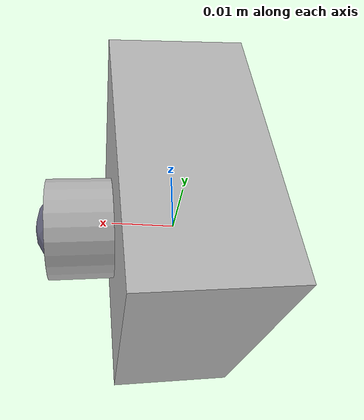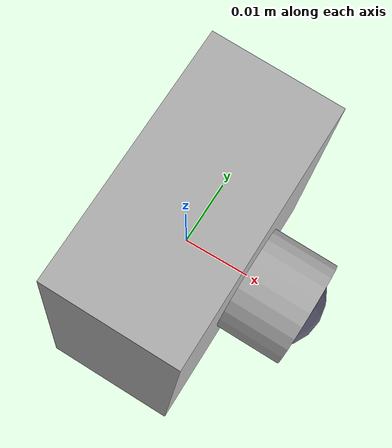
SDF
<?xml version="1.0" encoding="UTF-8"?>
<sdf version='1.9'>
  <model name='mono_cam'>
    <pose>0 0 0 0 0 0</pose>
    <self_collide>false</self_collide>
    <static>false</static>
    <link name="camera_link">
      <pose>0 0 0 0 0.087266 0</pose>
      <inertial>
        <pose>0.03 0.03 0.03 0 0 0</pose>
        <mass>0.050</mass>
        <inertia>
          <ixx>0.00004</ixx>
          <ixy>0</ixy>
          <ixz>0</ixz>
          <iyy>0.00004</iyy>
          <iyz>0</iyz>
          <izz>0.00004</izz>
        </inertia>
      </inertial>
      <visual name="mono_cam/visual/housing">
        <geometry>
          <box>
            <size>0.02 0.04 0.04</size>
          </box>
        </geometry>
      </visual>
      <visual name="mono_cam/visual/lens">
        <pose>0.015 0 0 0 1.5707 0</pose>
        <geometry>
          <cylinder>
            <radius>0.008</radius>
            <length>0.01</length>
          </cylinder>
        </geometry>
      </visual>
      <visual name="mono_cam/visual/lens_glass">
        <pose>0.014 0 0 0 0 0</pose>
        <geometry>
          <sphere>
            <radius>0.0079</radius>
          </sphere>
        </geometry>
        <material>
          <ambient>.4 .4 .5 .95</ambient>
          <diffuse>.4 .4 .5 .95</diffuse>
          <specular>1 1 1 1</specular>
          <emissive>0 0 0 1</emissive>
        </material>
      </visual>
      <sensor name="camera" type="camera">
        <topic>/rgb_camera/image</topic>
        <pose>0 0 0 0 0 0</pose>
        <always_on>1</always_on>
        <update_rate>15</update_rate>
        <visualize>true</visualize>
        <camera>
          <horizontal_fov>1.123992</horizontal_fov>
          <image>
            <format>R8G8B8</format>
            <width>1920</width>
            <height>1080</height>
          </image>
          <clip>
            <near>0.1</near>
            <far>5000</far>
          </clip>
        </camera>
      </sensor>
    </link>
  </model>
</sdf>
